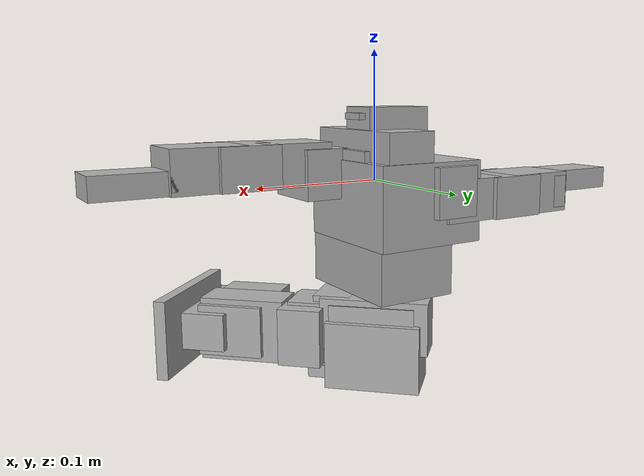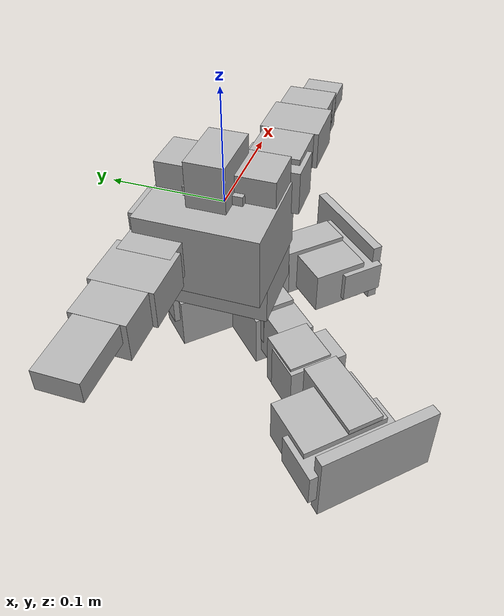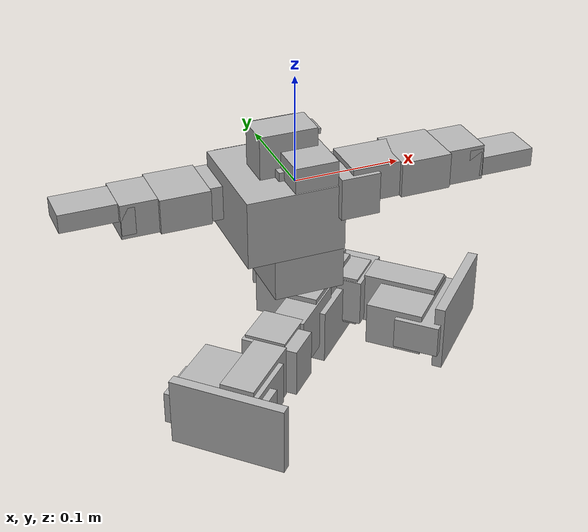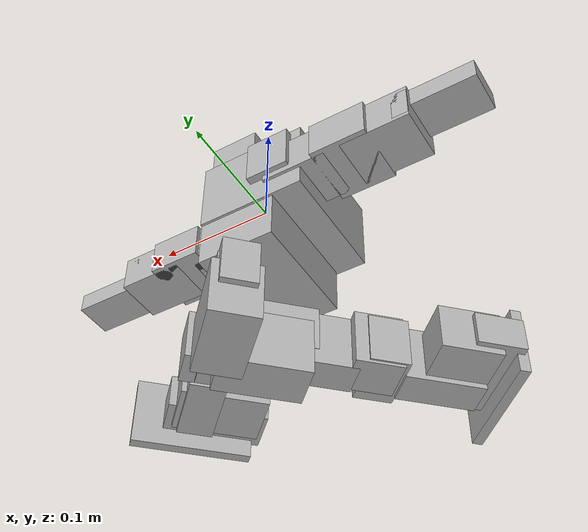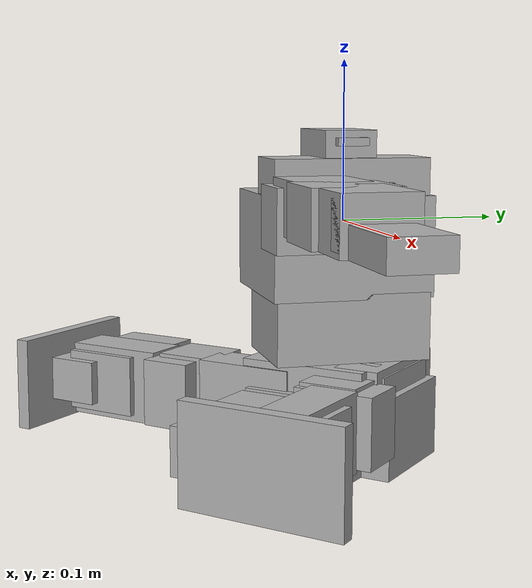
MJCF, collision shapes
<?xml version='1.0' encoding='utf-8'?>
<mujoco model="robotis_typea">
  <compiler angle="radian" meshdir="meshes" coordinate="local" />
  <asset>
    <mesh name="8b120736_BPF-CHEST-F_FCD-Conv_BDR-Col" file="8b120736_BPF-CHEST-F_FCD-Conv_BDR-Col.stl" scale="0.001 0.001 0.001" />
    <mesh name="94afeb60_BPF-CHEST-B_FCD-Conv_BDR-Col" file="94afeb60_BPF-CHEST-B_FCD-Conv_BDR-Col.stl" scale="0.001 0.001 0.001" />
    <mesh name="df1d2ef7_CM-5_FCD-Conv_BDR-Col" file="df1d2ef7_CM-5_FCD-Conv_BDR-Col.stl" scale="0.001 0.001 0.001" />
    <mesh name="2c813877_AX-S1_FCD-Conv_BDR-Col" file="2c813877_AX-S1_FCD-Conv_BDR-Col.stl" scale="0.001 0.001 0.001" />
    <mesh name="3c0b5d99_AX-12_FCD-Conv_BDR-Col" file="3c0b5d99_AX-12_FCD-Conv_BDR-Col.stl" scale="0.001 0.001 0.001" />
    <mesh name="d8612dc6_FP04-F3_FCD-Conv_BDR-Col" file="d8612dc6_FP04-F3_FCD-Conv_BDR-Col.stl" scale="0.001 0.001 0.001" />
    <mesh name="11c5acbd_FP04-F1_FCD-Conv_BDR-Col" file="11c5acbd_FP04-F1_FCD-Conv_BDR-Col.stl" scale="0.001 0.001 0.001" />
    <mesh name="5f501081_BPF-BU_FCD-Conv_BDR-Col" file="5f501081_BPF-BU_FCD-Conv_BDR-Col.stl" scale="0.001 0.001 0.001" />
    <mesh name="c9bc5e6a_BPF-WA_FCD-Conv_BDR-Col" file="c9bc5e6a_BPF-WA_FCD-Conv_BDR-Col.stl" scale="0.001 0.001 0.001" />
    <mesh name="b04d8bdf_FP04-F2_FCD-Conv_BDR-Col" file="b04d8bdf_FP04-F2_FCD-Conv_BDR-Col.stl" scale="0.001 0.001 0.001" />
    <mesh name="abc2df66_FP04-F11_FCD-Conv_BDR-Col" file="abc2df66_FP04-F11_FCD-Conv_BDR-Col.stl" scale="0.001 0.001 0.001" />
    <mesh name="df207a8e_FP04-F5_FCD-Conv_BDR-Col" file="df207a8e_FP04-F5_FCD-Conv_BDR-Col.stl" scale="0.001 0.001 0.001" />
    <mesh name="c44f3233_FP04-F6_FCD-Conv_BDR-Col" file="c44f3233_FP04-F6_FCD-Conv_BDR-Col.stl" scale="0.001 0.001 0.001" />
    <mesh name="4aa1180e_FP04-F7_FCD-Conv_BDR-Col" file="4aa1180e_FP04-F7_FCD-Conv_BDR-Col.stl" scale="0.001 0.001 0.001" />
    <mesh name="9856e80b_FP04-F4_FCD-Conv_BDR-Col" file="9856e80b_FP04-F4_FCD-Conv_BDR-Col.stl" scale="0.001 0.001 0.001" />
    <mesh name="bc9e07fb_FP04-F12_FCD-Conv_BDR-Col" file="bc9e07fb_FP04-F12_FCD-Conv_BDR-Col.stl" scale="0.001 0.001 0.001" />
    <mesh name="916d31db_Bioloid_CUERPO_vis_4" file="916d31db_Bioloid_CUERPO_vis_4.stl" scale="1.0 1.0 1.0" />
    <mesh name="fe3dec6d_Bioloid_CUERPO_vis_2" file="fe3dec6d_Bioloid_CUERPO_vis_2.stl" />
  </asset>
  <default>
    <mesh scale="0.001 0.001 0.001" />
    <geom rgba="0.7 0.7 0.7 1.0" />
    <joint damping="0.5" frictionloss="0.03" />
    <default class="visual">
      <geom contype="0" conaffinity="0" group="1" />
    </default>
  </default>
  <worldbody>
    <body name="base_link" pos="0 0 0" euler="0 0 0">
      <body name="torso_link" pos="0 0 0" euler="0 0 0">
        <inertial pos="-0.0141 0 -0.0199" euler="0 0 0" mass="0.411" diaginertia="7.8941435e-04 7.0070709e-04 5.6784609e-04" />
        <geom mesh="8b120736_BPF-CHEST-F_FCD-Conv_BDR-Col" type="mesh" pos="0 0 0" euler="1.5707963267948966 0 1.5707963267948966" class="visual" />
        <geom mesh="94afeb60_BPF-CHEST-B_FCD-Conv_BDR-Col" type="mesh" pos="0 0 0" euler="1.5707963267948966 0 1.5707963267948966" class="visual" />
        <geom mesh="df1d2ef7_CM-5_FCD-Conv_BDR-Col" type="mesh" pos="-0.032 0 -0.015" euler="0 3.141592653589793 1.5707963267948966" class="visual" />
        <geom mesh="2c813877_AX-S1_FCD-Conv_BDR-Col" type="mesh" pos="0 0 0.025" euler="-1.5707963267948966 0 -1.5707963267948966" class="visual" />
        <geom mesh="3c0b5d99_AX-12_FCD-Conv_BDR-Col" type="mesh" pos="0 -0.032 0" euler="1.5707963267948966 0 0" class="visual" />
        <geom mesh="d8612dc6_FP04-F3_FCD-Conv_BDR-Col" type="mesh" pos="-0.019 -0.032 -0.0145" euler="3.141592653589793 -1.5707963267948966 1.5707963267948966" class="visual" />
        <geom mesh="3c0b5d99_AX-12_FCD-Conv_BDR-Col" type="mesh" pos="0 0.032 0" euler="1.5707963267948966 0 3.141592653589793" class="visual" />
        <geom mesh="d8612dc6_FP04-F3_FCD-Conv_BDR-Col" type="mesh" pos="-0.019 0.032 -0.0145" euler="3.141592653589793 -1.5707963267948966 1.5707963267948966" class="visual" />
        <geom mesh="d8612dc6_FP04-F3_FCD-Conv_BDR-Col" type="mesh" pos="0.0175 0 -0.0655" euler="0 0 1.5707963267948966" class="visual" />
        <geom mesh="d8612dc6_FP04-F3_FCD-Conv_BDR-Col" type="mesh" pos="-0.0175 0 -0.0655" euler="0 0 -1.5707963267948966" class="visual" />
        <geom mesh="3c0b5d99_AX-12_FCD-Conv_BDR-Col" type="mesh" pos="0 -0.0385 -0.0655" euler="0 3.141592653589793 3.141592653589793" class="visual" />
        <geom mesh="3c0b5d99_AX-12_FCD-Conv_BDR-Col" type="mesh" pos="0 0.0385 -0.0655" euler="0 3.141592653589793 0" class="visual" />
        <geom type="box" size="0.027 0.0165 0.022" pos="-0.0122 0 0.035" euler="0 0 0" contype="1" conaffinity="1" />
        <geom type="box" size="0.04525 0.0515 0.03175" pos="-0.019 0 -0.015" euler="0 0 0" contype="1" conaffinity="1" />
        <geom type="box" size="0.0325 0.0495 0.0215" pos="-0.00625 0 -0.0648" euler="0 0 0" contype="1" conaffinity="1" />
        <body name="r_shoulder_swing_link" pos="0 -0.032 0" euler="1.5707963267948966 1.5707963267948966 0">
          <inertial pos="0 0.006 0.0375" euler="0 0 0" mass="0.010" diaginertia="2.35e-06 3.33e-06 3.52e-06" />
          <geom mesh="11c5acbd_FP04-F1_FCD-Conv_BDR-Col" type="mesh" pos="0 0.014 0.044" euler="0 3.141592653589793 3.141592653589793" class="visual" />
          <geom type="box" size="0.026 0.0195 0.018" pos="0 0.006 0.0375" euler="0 0 0" contype="1" conaffinity="1" />
          <body name="r_upper_arm_link" pos="0 0.014 0.044" euler="0 -1.5707963267948966 0">
            <inertial pos="0.03536 0 0" euler="0 0 0" mass="0.070" diaginertia="1.990e-05 5.746e-05 5.024e-05" />
            <geom mesh="3c0b5d99_AX-12_FCD-Conv_BDR-Col" type="mesh" pos="0 0 0" euler="0 0 1.5707963267948966" class="visual" />
            <geom mesh="5f501081_BPF-BU_FCD-Conv_BDR-Col" type="mesh" pos="0 0 -0.0185" euler="-1.5707963267948966 0 1.5707963267948966" class="visual" />
            <geom mesh="c9bc5e6a_BPF-WA_FCD-Conv_BDR-Col" type="mesh" pos="0 0 -0.019" euler="-1.5707963267948966 0 1.5707963267948966" class="visual" />
            <geom mesh="d8612dc6_FP04-F3_FCD-Conv_BDR-Col" type="mesh" pos="0.0415 0 0" euler="0 0 1.5707963267948966" class="visual" />
            <geom mesh="b04d8bdf_FP04-F2_FCD-Conv_BDR-Col" type="mesh" pos="0.0675 0 0" euler="-1.5707963267948966 1.5707963267948966 1.5707963267948966" class="visual" />
            <geom type="box" size="0.027 0.0165 0.022" pos="0.0148 0 0" euler="0 0 0" contype="1" conaffinity="1" />
            <geom type="box" size="0.0235 0.0165 0.026" pos="0.0555 0 0" euler="0 0 0" contype="1" conaffinity="1" />
            <body name="r_lower_arm_link" pos="0.0675 0 0" euler="0 0 0">
              <inertial pos="-0.0009848283 -0.0081892817 -0.0005847510" euler="0 0 0" mass="0.060" diaginertia="1.51e-5 4.38e-5 3.96e-5" />
              <geom mesh="3c0b5d99_AX-12_FCD-Conv_BDR-Col" type="mesh" pos="0 0 0" euler="0 0 1.5707963267948966" class="visual" />
              <geom mesh="5f501081_BPF-BU_FCD-Conv_BDR-Col" type="mesh" pos="0 0 -0.0185" euler="-1.5707963267948966 0 1.5707963267948966" class="visual" />
              <geom mesh="c9bc5e6a_BPF-WA_FCD-Conv_BDR-Col" type="mesh" pos="0 0 -0.019" euler="-1.5707963267948966 0 1.5707963267948966" class="visual" />
              <geom mesh="d8612dc6_FP04-F3_FCD-Conv_BDR-Col" type="mesh" pos="0.0415 0 0" euler="0 0 1.5707963267948966" class="visual" />
              <geom type="box" size="0.029 0.0165 0.022" pos="0.017 0 0" euler="0 0 0" contype="1" conaffinity="1" />
              <body name="r_hand_link" pos="0 0 0" euler="0 0 0">
                <inertial pos="0.05455 0.00385 0" euler="0 0 0" mass="0.008" diaginertia="2.2e-6 5.2e-6 5.0e-6" />
                <geom mesh="abc2df66_FP04-F11_FCD-Conv_BDR-Col" type="mesh" pos="0.0415 0 0" euler="3.141592653589793 -1.5707963267948966 0" class="visual" />
                <geom type="box" size="0.00655 0.01325 0.022" pos="0.039 0 0" euler="0 0 0" contype="1" conaffinity="1" />
                <geom type="box" size="0.02875 0.00875 0.0175" pos="0.0701 -0.0077 0" euler="0 0 0" contype="1" conaffinity="1" />
              </body>
              <joint name="r_elbow_joint" pos="0 0 0" type="hinge" range="-1.77 1.77" axis="0 0 -1" />
            </body>
            <joint name="r_shoulder_lateral_joint" pos="0 0 0" type="hinge" range="-1.5 1.5" axis="0 0 -1" />
          </body>
          <joint name="r_shoulder_swing_joint" pos="0 0 0" type="hinge" range="-1 1.5707963267948966" axis="0 0 1" />
        </body>
        <body name="l_shoulder_swing_link" pos="0 0.032 0" euler="-1.5707963267948966 -1.5707963267948966 0">
          <inertial pos="0 0.006 0.0375" euler="0 0 0" mass="0.010" diaginertia="2.35e-06 3.33e-06 3.52e-06" />
          <geom mesh="11c5acbd_FP04-F1_FCD-Conv_BDR-Col" type="mesh" pos="0 0.014 0.044" euler="0 3.141592653589793 3.141592653589793" class="visual" />
          <geom type="box" size="0.026 0.0195 0.018" pos="0 0.006 0.0375" euler="0 0 0" contype="1" conaffinity="1" />
          <body name="l_upper_arm_link" pos="0 0.014 0.044" euler="0 -1.5707963267948966 0">
            <inertial pos="0.03536 0 0" euler="0 0 0" mass="0.070" diaginertia="1.99e-05 5.746e-05 5.024e-05" />
            <geom mesh="3c0b5d99_AX-12_FCD-Conv_BDR-Col" type="mesh" pos="0 0 0" euler="3.141592653589793 0 -1.5707963267948966" class="visual" />
            <geom mesh="5f501081_BPF-BU_FCD-Conv_BDR-Col" type="mesh" pos="0 0 0.0185" euler="1.5707963267948966 0 1.5707963267948966" class="visual" />
            <geom mesh="c9bc5e6a_BPF-WA_FCD-Conv_BDR-Col" type="mesh" pos="0 0 0.019" euler="1.5707963267948966 0 1.5707963267948966" class="visual" />
            <geom mesh="d8612dc6_FP04-F3_FCD-Conv_BDR-Col" type="mesh" pos="0.0415 0 0" euler="3.141592653589793 0 -1.5707963267948966" class="visual" />
            <geom mesh="b04d8bdf_FP04-F2_FCD-Conv_BDR-Col" type="mesh" pos="0.0675 0 0" euler="1.5707963267948966 1.5707963267948966 -1.5707963267948966" class="visual" />
            <geom type="box" size="0.027 0.0165 0.022" pos="0.0148 0 0" euler="0 0 0" contype="1" conaffinity="1" />
            <geom type="box" size="0.0235 0.0165 0.026" pos="0.0555 0 0" euler="0 0 0" contype="1" conaffinity="1" />
            <body name="l_lower_arm_link" pos="0.0675 0 0" euler="0 0 0">
              <inertial pos="0.0000002032 0.0068291604 -0.0006710552" euler="0 0 0" mass="0.060" diaginertia="1.51e-5 4.38e-5 3.96e-5" />
              <geom mesh="3c0b5d99_AX-12_FCD-Conv_BDR-Col" type="mesh" pos="0 0 0" euler="3.141592653589793 0 -1.5707963267948966" class="visual" />
              <geom mesh="5f501081_BPF-BU_FCD-Conv_BDR-Col" type="mesh" pos="0 0 0.0185" euler="1.5707963267948966 0 1.5707963267948966" class="visual" />
              <geom mesh="c9bc5e6a_BPF-WA_FCD-Conv_BDR-Col" type="mesh" pos="0 0 0.019" euler="1.5707963267948966 0 1.5707963267948966" class="visual" />
              <geom mesh="d8612dc6_FP04-F3_FCD-Conv_BDR-Col" type="mesh" pos="0.0415 0 0" euler="3.141592653589793 0 -1.5707963267948966" class="visual" />
              <geom type="box" size="0.029 0.0165 0.022" pos="0.017 0 0" euler="0 0 0" contype="1" conaffinity="1" />
              <body name="l_hand_link" pos="0 0 0" euler="0 0 0">
                <inertial pos="0.05455 -0.00385 0" euler="0 0 0" mass="0.008" diaginertia="2.2e-6 5.2e-6 5.0e-6" />
                <geom mesh="abc2df66_FP04-F11_FCD-Conv_BDR-Col" type="mesh" pos="0.0415 0 0" euler="0 -1.5707963267948966 3.141592653589793" class="visual" />
                <geom type="box" size="0.00655 0.01325 0.022" pos="0.039 0 0" euler="0 0 0" contype="1" conaffinity="1" />
                <geom type="box" size="0.02875 0.00875 0.0175" pos="0.0701 -0.0077 0" euler="0 0 0" contype="1" conaffinity="1" />
              </body>
              <joint name="l_elbow_joint" pos="0 0 0" type="hinge" range="-1.77 1.77" axis="0 0 1" />
            </body>
            <joint name="l_shoulder_lateral_joint" pos="0 0 0" type="hinge" range="-1.5 1.5" axis="0 0 1" />
          </body>
          <joint name="l_shoulder_swing_joint" pos="0 0 0" type="hinge" range="-1 1.5707963267948966" axis="0 0 1" />
        </body>
        <body name="r_hip_twist_link" pos="0 -0.0385 -0.0655" euler="0 3.141592653589793 0.788">
          <inertial pos="0.0008 0.02 0.041" euler="0 0 0" mass="0.016" diaginertia="1.1372e-05 3.3083e-06 1.0307e-05" />
          <geom mesh="df207a8e_FP04-F5_FCD-Conv_BDR-Col" type="mesh" pos="0 0.02 0.05" euler="3.141592653589793 0 3.141592653589793" class="visual" />
          <geom type="box" size="0.0145 0.0415 0.02025" pos="0.0008 0.02 0.041" euler="0 0 0" contype="1" conaffinity="1" />
          <body name="r_hip_lateral_link" pos="0 0 0.05" euler="-1.5707963267948966 0 0">
            <inertial pos="0 -0.0135 0.02" euler="0 0 0" mass="0.120" diaginertia="7.79941e-05 6.79841e-05 4.20099e-05" />
            <geom mesh="3c0b5d99_AX-12_FCD-Conv_BDR-Col" type="mesh" pos="0 0 0.0353" euler="0 0 -0.0" class="visual" />
            <geom mesh="c44f3233_FP04-F6_FCD-Conv_BDR-Col" type="mesh" pos="-0.019 -0.0145 0.0513" euler="0 -1.5707963267948966 -1.5707963267948966" class="visual" />
            <geom mesh="c44f3233_FP04-F6_FCD-Conv_BDR-Col" type="mesh" pos="0.019 -0.0145 0.0513" euler="0 -1.5707963267948966 1.5707963267948966" class="visual" />
            <geom mesh="3c0b5d99_AX-12_FCD-Conv_BDR-Col" type="mesh" pos="0 0 0.0032999999999999974" euler="-0.0 -1.5707963267948966 0" class="visual" />
            <geom mesh="5f501081_BPF-BU_FCD-Conv_BDR-Col" type="mesh" pos="0 0 -0.014700000000000005" euler="-1.5707963267948966 -0.0 0" class="visual" />
            <geom mesh="4aa1180e_FP04-F7_FCD-Conv_BDR-Col" type="mesh" pos="0 -0.0145 -0.0157" euler="1.5707963267948966 -0.0 1.5707963267948966" class="visual" />
            <geom type="box" size="0.02 0.0255 0.03605" pos="0 -0.0135 0.019999999999999997" euler="0 0 0" contype="1" conaffinity="1" />
            <body name="r_upper_leg_link" pos="0 0 0" euler="1.5707963267948966 0 -1.5707963267948966">
              <inertial pos="0.0413220734 0.0028089691 0.0" euler="0 0 0" mass="0.030" diaginertia="9.07824e-06 2.93746e-05 2.64478e-05" />
              <geom mesh="9856e80b_FP04-F4_FCD-Conv_BDR-Col" type="mesh" pos="0 0 0" euler="-1.5707963267948966 -1.5707963267948966 -1.5707963267948966" class="visual" />
              <geom mesh="11c5acbd_FP04-F1_FCD-Conv_BDR-Col" type="mesh" pos="0.075 0.0145 0" euler="1.5707963267948966 1.5707963267948966 -1.5707963267948966" class="visual" />
              <geom type="box" size="0.0325 0.015 0.0245" pos="0.0214 0 0" euler="0 0 0" contype="1" conaffinity="1" />
              <geom type="box" size="0.02 0.01855 0.0245" pos="0.0675 0.0065 0" euler="0 0 0" contype="1" conaffinity="1" />
              <body name="r_lower_leg_link" pos="0.075 0.0145 0" euler="0 0 0">
                <inertial pos="0.02808422 -0.01407082 0.0" euler="0 0 0" mass="0.080" diaginertia="2.556272892651194e-05 8.2316347171946e-05 7.852667401664598e-05" />
                <geom mesh="3c0b5d99_AX-12_FCD-Conv_BDR-Col" type="mesh" pos="0 0 0" euler="0 0 0" class="visual" />
                <geom mesh="d8612dc6_FP04-F3_FCD-Conv_BDR-Col" type="mesh" pos="0.019 -0.0145 0" euler="0 0 1.5707963267948966" class="visual" />
                <geom mesh="9856e80b_FP04-F4_FCD-Conv_BDR-Col" type="mesh" pos="0.071 -0.0145 0" euler="1.5707963267948966 1.5707963267948966 -1.5707963267948966" class="visual" />
                <geom type="box" size="0.0165 0.0255 0.022" pos="0 -0.0135 0" euler="0 0 0" contype="1" conaffinity="1" />
                <geom type="box" size="0.0335 0.015 0.0245" pos="0.0492 -0.0145 0" euler="0 0 0" contype="1" conaffinity="1" />
                <body name="r_ankle_swing_link" pos="0.071 -0.0145 0" euler="3.141592653589793 0 0">
                  <inertial pos="-0.0135 -0.0167 0.0" euler="0 0 0" mass="0.0685" diaginertia="3.8807590416666664e-05 2.3980708333333334e-05 4.452163208333333e-05" />
                  <geom mesh="3c0b5d99_AX-12_FCD-Conv_BDR-Col" type="mesh" pos="0 0 0" euler="-0.0 3.141592653589793 -1.5707963267948966" class="visual" />
                  <geom mesh="4aa1180e_FP04-F7_FCD-Conv_BDR-Col" type="mesh" pos="-0.0145 0.019 0" euler="3.141592653589793 -0.0 0" class="visual" />
                  <geom mesh="3c0b5d99_AX-12_FCD-Conv_BDR-Col" type="mesh" pos="0 -0.032 0" euler="0 1.5707963267948966 -1.5707963267948966" class="visual" />
                  <geom mesh="c44f3233_FP04-F6_FCD-Conv_BDR-Col" type="mesh" pos="-0.0145 -0.048 0.019" euler="-1.5707963267948966 0 -1.5707963267948966" class="visual" />
                  <geom mesh="c44f3233_FP04-F6_FCD-Conv_BDR-Col" type="mesh" pos="-0.0145 -0.048 -0.019" euler="1.5707963267948966 0 -1.5707963267948966" class="visual" />
                  <geom type="box" size="0.0255 0.03605 0.02" pos="-0.0135 -0.0167 0" euler="0 0 0" contype="1" conaffinity="1" />
                  <body name="r_ankle_lateral_link" pos="0 0 0" euler="-1.5707963267948966 0 0">
                    <inertial pos="-0.0055676472 0.0034398816 0.0028465215" euler="0 0 0" mass="0.015" diaginertia="9.962e-06 1.1248e-05 3.744e-06" />
                    <geom mesh="5f501081_BPF-BU_FCD-Conv_BDR-Col" type="mesh" pos="0 0 0.015" euler="1.5707963267948966 0 0" class="visual" />
                    <geom mesh="df207a8e_FP04-F5_FCD-Conv_BDR-Col" type="mesh" pos="0 0 -0.0155" euler="-1.5707963267948966 -0.0 -1.5707963267948966" class="visual" />
                    <geom type="box" size="0.02025 0.0145 0.0415" pos="0.009 0 -0.016" euler="0 0 0" contype="1" conaffinity="1" />
                    <body name="r_foot_link" pos="0 0 0" euler="0 0 0">
                      <inertial pos="0.0277 0 0" euler="0 0 0" mass="0.015" diaginertia="1.74025e-05 1.28525e-05 4.75250e-06" />
                      <geom mesh="bc9e07fb_FP04-F12_FCD-Conv_BDR-Col" type="mesh" pos="0.0235 0 0" euler="0 1.5707963267948966 -1.5707963267948966" class="visual" />
                      <geom type="box" size="0.0045 0.0305 0.0505" pos="0.0277 0 0" euler="0 0 0" contype="1" conaffinity="1" />
                    </body>
                    <joint name="r_ankle_lateral_joint" pos="0 0 0" type="hinge" range="-0.8 0.8" axis="0 0 -1" />
                  </body>
                  <joint name="r_ankle_swing_joint" pos="0 0 0" type="hinge" range="-0.4 2.0" axis="0 0 1" />
                </body>
                <joint name="r_knee_joint" pos="0 0 0" type="hinge" range="-2 0" axis="0 0 -1" />
              </body>
              <joint name="r_hip_swing_joint" pos="0 0 0" type="hinge" range="-2.0 2.0" axis="0 0 1" />
            </body>
            <joint name="r_hip_lateral_joint" pos="0 0 0" type="hinge" range="-0.8 0.8" axis="0 0 -1" />
          </body>
          <joint name="r_hip_twist_joint" pos="0 0 0" type="hinge" range="-0.8 0.8" axis="0 0 1" />
        </body>
        <body name="l_hip_twist_link" pos="0 0.0385 -0.0655" euler="0 3.141592653589793 -0.788">
          <inertial pos="0.0008 -0.02 0.041" euler="0 0 0" mass="0.016" diaginertia="1.1372e-05 3.3083e-06 1.0307e-05" />
          <geom mesh="df207a8e_FP04-F5_FCD-Conv_BDR-Col" type="mesh" pos="0 -0.02 0.05" euler="3.141592653589793 0 0.0" class="visual" />
          <geom type="box" size="0.0145 0.0415 0.02025" pos="0.0008 -0.02 0.041" euler="0 0 0" contype="1" conaffinity="1" />
          <body name="l_hip_lateral_link" pos="0 0 0.05" euler="1.5707963267948966 0 0">
            <inertial pos="0 0.0135 0.02" euler="0 0 0" mass="0.120" diaginertia="7.7994e-05 6.7984e-05 4.20099e-05" />
            <geom mesh="3c0b5d99_AX-12_FCD-Conv_BDR-Col" type="mesh" pos="0 0 0.0353" euler="0 0 3.141592653589793" class="visual" />
            <geom mesh="c44f3233_FP04-F6_FCD-Conv_BDR-Col" type="mesh" pos="0.019 0.0145 0.0513" euler="0 -1.5707963267948966 1.5707963267948966" class="visual" />
            <geom mesh="c44f3233_FP04-F6_FCD-Conv_BDR-Col" type="mesh" pos="-0.019 0.0145 0.0513" euler="0 -1.5707963267948966 -1.5707963267948966" class="visual" />
            <geom mesh="3c0b5d99_AX-12_FCD-Conv_BDR-Col" type="mesh" pos="0 0 0.0032999999999999974" euler="3.141592653589793 1.5707963267948966 0" class="visual" />
            <geom mesh="5f501081_BPF-BU_FCD-Conv_BDR-Col" type="mesh" pos="0 0 -0.014700000000000005" euler="1.5707963267948966 3.141592653589793 0" class="visual" />
            <geom mesh="4aa1180e_FP04-F7_FCD-Conv_BDR-Col" type="mesh" pos="0 0.0145 -0.0157" euler="-1.5707963267948966 3.141592653589793 1.5707963267948966" class="visual" />
            <geom type="box" size="0.02 0.0255 0.03605" pos="0 0.0135 0.019999999999999997" euler="0 0 0" contype="1" conaffinity="1" />
            <body name="l_upper_leg_link" pos="0 0 0" euler="1.5707963267948966 0 -1.5707963267948966">
              <inertial pos="-0.0413220734 0.0028089691 0.0" euler="0 0 0" mass="0.030" diaginertia="9.07824e-06 2.93746e-05 2.64478e-05" />
              <geom mesh="9856e80b_FP04-F4_FCD-Conv_BDR-Col" type="mesh" pos="0 0 0" euler="1.5707963267948966 1.5707963267948966 -1.5707963267948966" class="visual" />
              <geom mesh="11c5acbd_FP04-F1_FCD-Conv_BDR-Col" type="mesh" pos="-0.075 0.0145 0" euler="1.5707963267948966 -1.5707963267948966 1.5707963267948966" class="visual" />
              <geom type="box" size="0.0325 0.015 0.0245" pos="-0.0214 0 0" euler="0 0 0" contype="1" conaffinity="1" />
              <geom type="box" size="0.02 0.01855 0.0245" pos="-0.0675 0.0065 0" euler="0 0 0" contype="1" conaffinity="1" />
              <body name="l_lower_leg_link" pos="-0.075 0.0145 0" euler="0 0 0">
                <inertial pos="-0.02808422 -0.01407082 0.0" euler="0 0 0" mass="0.080" diaginertia="2.5563e-05 8.2316e-05 7.8527e-05" />
                <geom mesh="3c0b5d99_AX-12_FCD-Conv_BDR-Col" type="mesh" pos="0 0 0" euler="0 0 0" class="visual" />
                <geom mesh="d8612dc6_FP04-F3_FCD-Conv_BDR-Col" type="mesh" pos="-0.019 -0.0145 0" euler="0 0 -1.5707963267948966" class="visual" />
                <geom mesh="9856e80b_FP04-F4_FCD-Conv_BDR-Col" type="mesh" pos="-0.071 -0.0145 0" euler="-1.5707963267948966 -1.5707963267948966 -1.5707963267948966" class="visual" />
                <geom type="box" size="0.0165 0.0255 0.022" pos="0 -0.0135 0" euler="0 0 0" contype="1" conaffinity="1" />
                <geom type="box" size="0.0335 0.015 0.0245" pos="-0.0492 -0.0145 0" euler="0 0 0" contype="1" conaffinity="1" />
                <body name="l_ankle_swing_link" pos="-0.071 -0.0145 0" euler="3.141592653589793 0 0">
                  <inertial pos="0.0135 -0.0167 0.0" euler="0 0 0" mass="0.0685" diaginertia="3.8807590416666664e-05 2.3980708333333334e-05 4.452163208333333e-05" />
                  <geom mesh="3c0b5d99_AX-12_FCD-Conv_BDR-Col" type="mesh" pos="0 0 0" euler="3.141592653589793 0.0 -1.5707963267948966" class="visual" />
                  <geom mesh="4aa1180e_FP04-F7_FCD-Conv_BDR-Col" type="mesh" pos="0.0145 0.019 0" euler="3.141592653589793 3.141592653589793 0" class="visual" />
                  <geom mesh="3c0b5d99_AX-12_FCD-Conv_BDR-Col" type="mesh" pos="0 -0.032 0" euler="0 -1.5707963267948966 1.5707963267948966" class="visual" />
                  <geom mesh="c44f3233_FP04-F6_FCD-Conv_BDR-Col" type="mesh" pos="0.0145 -0.048 -0.019" euler="1.5707963267948966 0 -1.5707963267948966" class="visual" />
                  <geom mesh="c44f3233_FP04-F6_FCD-Conv_BDR-Col" type="mesh" pos="0.0145 -0.048 0.019" euler="-1.5707963267948966 0 -1.5707963267948966" class="visual" />
                  <geom type="box" size="0.0255 0.03605 0.02" pos="0.0135 -0.0167 0" euler="0 0 0" contype="1" conaffinity="1" />
                  <body name="l_ankle_lateral_link" pos="0 0 0" euler="-1.5707963267948966 0 0">
                    <inertial pos="-0.0055676472 -0.0035014440 0.0028465215" euler="0 0 0" mass="0.015" diaginertia="9.968e-06 1.1248e-05 3.750e-06" />
                    <geom mesh="5f501081_BPF-BU_FCD-Conv_BDR-Col" type="mesh" pos="0 0 0.015" euler="1.5707963267948966 0 0" class="visual" />
                    <geom mesh="df207a8e_FP04-F5_FCD-Conv_BDR-Col" type="mesh" pos="0 0 -0.0155" euler="1.5707963267948966 3.141592653589793 -1.5707963267948966" class="visual" />
                    <geom type="box" size="0.02025 0.0145 0.0415" pos="-0.009 0 -0.016" euler="0 0 0" contype="1" conaffinity="1" />
                    <body name="l_foot_link" pos="0 0 0" euler="0 0 0">
                      <inertial pos="-0.0277 0 0" euler="0 0 0" mass="0.015" diaginertia="1.74025e-05 1.28525e-05 4.75250e-06" />
                      <geom mesh="bc9e07fb_FP04-F12_FCD-Conv_BDR-Col" type="mesh" pos="-0.0235 0 0" euler="3.141592653589793 1.5707963267948966 -1.5707963267948966" class="visual" />
                      <geom type="box" size="0.0045 0.0305 0.0505" pos="-0.0277 0 0" euler="0 0 0" contype="1" conaffinity="1" />
                    </body>
                    <joint name="l_ankle_lateral_joint" pos="0 0 0" type="hinge" range="-0.8 0.8" axis="0 0 -1" />
                  </body>
                  <joint name="l_ankle_swing_joint" pos="0 0 0" type="hinge" range="-2.0 0.4" axis="0 0 1" />
                </body>
                <joint name="l_knee_joint" pos="0 0 0" type="hinge" range="0 2" axis="0 0 -1" />
              </body>
              <joint name="l_hip_swing_joint" pos="0 0 0" type="hinge" range="-2.0 2.0" axis="0 0 1" />
            </body>
            <joint name="l_hip_lateral_joint" pos="0 0 0" type="hinge" range="-0.8 0.8" axis="0 0 -1" />
          </body>
          <joint name="l_hip_twist_joint" pos="0 0 0" type="hinge" range="-0.8 0.8" axis="0 0 1" />
        </body>
        <body name="head_link" pos="0 0 0" euler="0 0 0">
          <inertial pos="0 0 0.03" euler="0 0 0" mass="0.05" diaginertia="6.58e-05 6.58e-05 2.08e-05" />
          <geom mesh="916d31db_Bioloid_CUERPO_vis_4" type="mesh" pos="0 0 0" euler="0 0 0" class="visual" />
          <geom type="box" size="0.025 0.025 0.025" pos="0 0 0" euler="0 0 0" contype="1" conaffinity="1" />
        </body>
        <body name="head2_link" pos="0 0 0" euler="0 0 0">
          <inertial pos="0 0 0" euler="0 0 0" mass="0.06" diaginertia="8.2e-05 4.0e-05 5.8e-05" />
          <geom mesh="fe3dec6d_Bioloid_CUERPO_vis_2" type="mesh" pos="0 0 0" euler="0 0 0" class="visual" />
          <geom type="box" size="0.02 0.05 0.04" pos="0 0 0" euler="0 0 0" contype="1" conaffinity="1" />
        </body>
      </body>
      <body name="imu_link" pos="0 0 0.05" euler="0 0 0">
        <geom type="box" size="0.02 0.01 0.0025" pos="0 0 0" euler="0 0 0" class="visual" />
        <geom type="box" size="0.005 0.005 0.005" pos="0 0 0" euler="0 0 0" contype="1" conaffinity="1" />
      </body>
      <freejoint />
    </body>
  </worldbody>
  <actuator>
    <position name="r_shoulder_swing_joint_act" joint="r_shoulder_swing_joint" />
    <position name="l_shoulder_swing_joint_act" joint="l_shoulder_swing_joint" />
    <position name="r_shoulder_lateral_joint_act" joint="r_shoulder_lateral_joint" />
    <position name="l_shoulder_lateral_joint_act" joint="l_shoulder_lateral_joint" />
    <position name="r_elbow_joint_act" joint="r_elbow_joint" />
    <position name="l_elbow_joint_act" joint="l_elbow_joint" />
    <position name="r_hip_twist_joint_act" joint="r_hip_twist_joint" />
    <position name="l_hip_twist_joint_act" joint="l_hip_twist_joint" />
    <position name="r_hip_lateral_joint_act" joint="r_hip_lateral_joint" />
    <position name="l_hip_lateral_joint_act" joint="l_hip_lateral_joint" />
    <position name="r_hip_swing_joint_act" joint="r_hip_swing_joint" />
    <position name="l_hip_swing_joint_act" joint="l_hip_swing_joint" />
    <position name="r_knee_joint_act" joint="r_knee_joint" />
    <position name="l_knee_joint_act" joint="l_knee_joint" />
    <position name="r_ankle_swing_joint_act" joint="r_ankle_swing_joint" />
    <position name="l_ankle_swing_joint_act" joint="l_ankle_swing_joint" />
    <position name="r_ankle_lateral_joint_act" joint="r_ankle_lateral_joint" />
    <position name="l_ankle_lateral_joint_act" joint="l_ankle_lateral_joint" />
  </actuator>
</mujoco>
